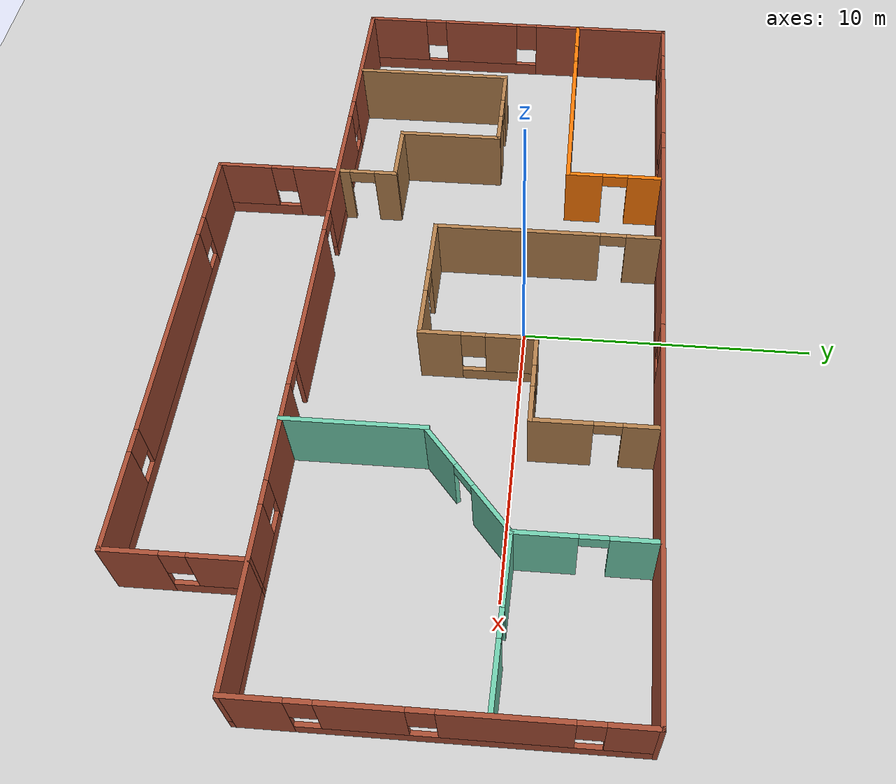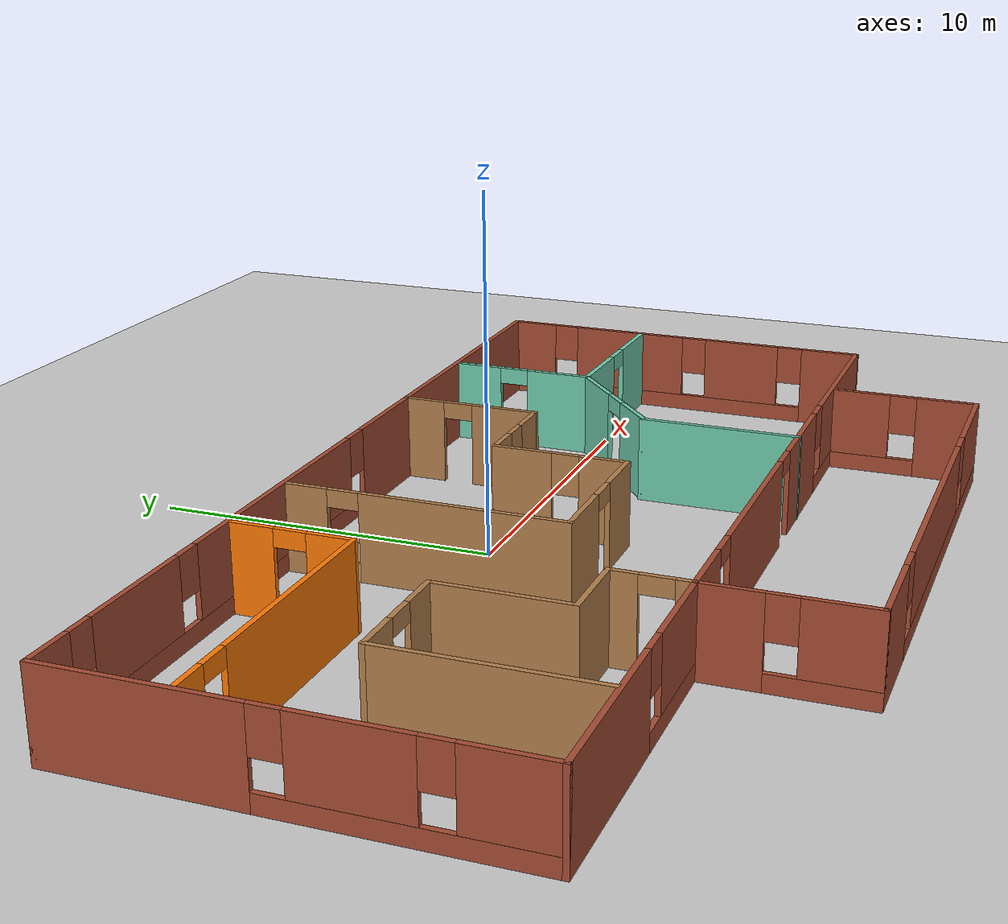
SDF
<sdf version="1.6">
 <world name="default">
  <model name="ground_plane">
   <static>1</static>
   <link name="link">
    <collision name="collision">
     <geometry><plane><normal>0 0 1</normal><size>100 100</size></plane></geometry>
     <surface>
      <contact><collide_bitmask>65535</collide_bitmask></contact>
      <friction><ode><mu>100</mu><mu2>50</mu2></ode></friction>
     </surface>
    </collision>
    <visual name="visual">
     <cast_shadows>0</cast_shadows>
     <geometry><plane><normal>0 0 1</normal><size>100 100</size></plane></geometry>
     <material>
      <script><uri>file://media/materials/scripts/gazebo.material</uri><name>Gazebo/Grey</name></script>
     </material>
    </visual>
   </link>
  </model>
  <model name="Building">
   <pose>0.19679 -3.43922 0 0 -0 0</pose>
   <link name="Wall_10">
    <pose>11.1971 3.62387 0 0 0 -0.022081</pose>
    <visual name="Wall_10_Visual_0">
     <pose>-1.47859 0 1.25 0 -0 0</pose>
     <geometry><box><size>2.39049 0.15 2.5</size></box></geometry>
     <material>
      <script><uri>file://media/materials/scripts/gazebo.material</uri><name>Gazebo/Grey</name></script>
      <ambient>0.435294 0.796078 0.67451 1</ambient>
     </material>
     <meta><layer>0</layer></meta>
    </visual>
    <collision name="Wall_10_Collision_0">
     <geometry><box><size>2.39049 0.15 2.5</size></box></geometry>
     <pose>-1.47859 0 1.25 0 -0 0</pose>
    </collision>
    <visual name="Wall_10_Visual_1">
     <pose>1.64525 0 1.25 0 -0 0</pose>
     <geometry><box><size>2.05719 0.15 2.5</size></box></geometry>
     <material>
      <script><uri>file://media/materials/scripts/gazebo.material</uri><name>Gazebo/Grey</name></script>
      <ambient>0.435294 0.796078 0.67451 1</ambient>
     </material>
     <meta><layer>0</layer></meta>
    </visual>
    <collision name="Wall_10_Collision_1">
     <geometry><box><size>2.05719 0.15 2.5</size></box></geometry>
     <pose>1.64525 0 1.25 0 -0 0</pose>
    </collision>
    <visual name="Wall_10_Visual_2">
     <pose>0.166652 0 2.25 0 -0 0</pose>
     <geometry><box><size>0.9 0.15 0.5</size></box></geometry>
     <material>
      <script><uri>file://media/materials/scripts/gazebo.material</uri><name>Gazebo/Grey</name></script>
      <ambient>0.435294 0.796078 0.67451 1</ambient>
     </material>
     <meta><layer>0</layer></meta>
    </visual>
    <collision name="Wall_10_Collision_2">
     <geometry><box><size>0.9 0.15 0.5</size></box></geometry>
     <pose>0.166652 0 2.25 0 -0 0</pose>
    </collision>
   </link>
   <link name="Wall_12">
    <pose>8.59888 5.84302 0 0 -0 1.5708</pose>
    <visual name="Wall_12_Visual_0">
     <pose>-1.2176 0 1.25 0 -0 0</pose>
     <geometry><box><size>2.06481 0.15 2.5</size></box></geometry>
     <material>
      <script><uri>file://media/materials/scripts/gazebo.material</uri><name>Gazebo/Grey</name></script>
      <ambient>0.435294 0.796078 0.67451 1</ambient>
     </material>
     <meta><layer>0</layer></meta>
    </visual>
    <collision name="Wall_12_Collision_0">
     <geometry><box><size>2.06481 0.15 2.5</size></box></geometry>
     <pose>-1.2176 0 1.25 0 -0 0</pose>
    </collision>
    <visual name="Wall_12_Visual_1">
     <pose>1.4824 0 1.25 0 -0 0</pose>
     <geometry><box><size>1.53519 0.15 2.5</size></box></geometry>
     <material>
      <script><uri>file://media/materials/scripts/gazebo.material</uri><name>Gazebo/Grey</name></script>
      <ambient>0.435294 0.796078 0.67451 1</ambient>
     </material>
     <meta><layer>0</layer></meta>
    </visual>
    <collision name="Wall_12_Collision_1">
     <geometry><box><size>1.53519 0.15 2.5</size></box></geometry>
     <pose>1.4824 0 1.25 0 -0 0</pose>
    </collision>
    <visual name="Wall_12_Visual_2">
     <pose>0.264806 0 2.25 0 -0 0</pose>
     <geometry><box><size>0.9 0.15 0.5</size></box></geometry>
     <material>
      <script><uri>file://media/materials/scripts/gazebo.material</uri><name>Gazebo/Grey</name></script>
      <ambient>0.435294 0.796078 0.67451 1</ambient>
     </material>
     <meta><layer>0</layer></meta>
    </visual>
    <collision name="Wall_12_Collision_2">
     <geometry><box><size>0.9 0.15 0.5</size></box></geometry>
     <pose>0.264806 0 2.25 0 -0 0</pose>
    </collision>
   </link>
   <link name="Wall_14">
    <pose>-2.94311 4.05196 0 0 0 -1.5708</pose>
    <visual name="Wall_14_Visual_0">
     <pose>-3.37904 0 1.25 0 -0 0</pose>
     <geometry><box><size>1.24193 0.15 2.5</size></box></geometry>
     <material>
      <script><uri>file://media/materials/scripts/gazebo.material</uri><name>Gazebo/Wood</name></script>
      <ambient>1 1 1 1</ambient>
     </material>
     <meta><layer>0</layer></meta>
    </visual>
    <collision name="Wall_14_Collision_0">
     <geometry><box><size>1.24193 0.15 2.5</size></box></geometry>
     <pose>-3.37904 0 1.25 0 -0 0</pose>
    </collision>
    <visual name="Wall_14_Visual_1">
     <pose>1.07096 0 1.25 0 -0 0</pose>
     <geometry><box><size>5.85807 0.15 2.5</size></box></geometry>
     <material>
      <script><uri>file://media/materials/scripts/gazebo.material</uri><name>Gazebo/Wood</name></script>
      <ambient>1 1 1 1</ambient>
     </material>
     <meta><layer>0</layer></meta>
    </visual>
    <collision name="Wall_14_Collision_1">
     <geometry><box><size>5.85807 0.15 2.5</size></box></geometry>
     <pose>1.07096 0 1.25 0 -0 0</pose>
    </collision>
    <visual name="Wall_14_Visual_2">
     <pose>-2.30807 0 2.25 0 -0 0</pose>
     <geometry><box><size>0.9 0.15 0.5</size></box></geometry>
     <material>
      <script><uri>file://media/materials/scripts/gazebo.material</uri><name>Gazebo/Wood</name></script>
      <ambient>1 1 1 1</ambient>
     </material>
     <meta><layer>0</layer></meta>
    </visual>
    <collision name="Wall_14_Collision_2">
     <geometry><box><size>0.9 0.15 0.5</size></box></geometry>
     <pose>-2.30807 0 2.25 0 -0 0</pose>
    </collision>
   </link>
   <link name="Wall_15">
    <pose>-0.643108 0.126957 0 0 -0 0</pose>
    <visual name="Wall_15_Visual_0">
     <pose>-1.33137 0 1.25 0 -0 0</pose>
     <geometry><box><size>2.08726 0.15 2.5</size></box></geometry>
     <material>
      <script><uri>file://media/materials/scripts/gazebo.material</uri><name>Gazebo/Wood</name></script>
      <ambient>1 1 1 1</ambient>
     </material>
     <meta><layer>0</layer></meta>
    </visual>
    <collision name="Wall_15_Collision_0">
     <geometry><box><size>2.08726 0.15 2.5</size></box></geometry>
     <pose>-1.33137 0 1.25 0 -0 0</pose>
    </collision>
    <visual name="Wall_15_Visual_1">
     <pose>1.49363 0 1.25 0 -0 0</pose>
     <geometry><box><size>1.76274 0.15 2.5</size></box></geometry>
     <material>
      <script><uri>file://media/materials/scripts/gazebo.material</uri><name>Gazebo/Wood</name></script>
      <ambient>1 1 1 1</ambient>
     </material>
     <meta><layer>0</layer></meta>
    </visual>
    <collision name="Wall_15_Collision_1">
     <geometry><box><size>1.76274 0.15 2.5</size></box></geometry>
     <pose>1.49363 0 1.25 0 -0 0</pose>
    </collision>
    <visual name="Wall_15_Visual_2">
     <pose>0.16226 0 2.25 0 -0 0</pose>
     <geometry><box><size>0.9 0.15 0.5</size></box></geometry>
     <material>
      <script><uri>file://media/materials/scripts/gazebo.material</uri><name>Gazebo/Wood</name></script>
      <ambient>1 1 1 1</ambient>
     </material>
     <meta><layer>0</layer></meta>
    </visual>
    <collision name="Wall_15_Collision_2">
     <geometry><box><size>0.9 0.15 0.5</size></box></geometry>
     <pose>0.16226 0 2.25 0 -0 0</pose>
    </collision>
   </link>
   <link name="Wall_16">
    <pose>1.65689 2.05196 0 0 -0 1.5708</pose>
    <visual name="Wall_16_Visual_0">
     <pose>-1.27857 0 1.25 0 -0 0</pose>
     <geometry><box><size>1.44286 0.15 2.5</size></box></geometry>
     <material>
      <script><uri>file://media/materials/scripts/gazebo.material</uri><name>Gazebo/Wood</name></script>
      <ambient>1 1 1 1</ambient>
     </material>
     <meta><layer>0</layer></meta>
    </visual>
    <collision name="Wall_16_Collision_0">
     <geometry><box><size>1.44286 0.15 2.5</size></box></geometry>
     <pose>-1.27857 0 1.25 0 -0 0</pose>
    </collision>
    <visual name="Wall_16_Visual_1">
     <pose>0.721429 0 0.25 0 -0 0</pose>
     <geometry><box><size>2.55714 0.15 0.5</size></box></geometry>
     <material>
      <script><uri>file://media/materials/scripts/gazebo.material</uri><name>Gazebo/Wood</name></script>
      <ambient>1 1 1 1</ambient>
     </material>
     <meta><layer>0</layer></meta>
    </visual>
    <collision name="Wall_16_Collision_1">
     <geometry><box><size>2.55714 0.15 0.5</size></box></geometry>
     <pose>0.721429 0 0.25 0 -0 0</pose>
    </collision>
    <visual name="Wall_16_Visual_2">
     <pose>1.12143 0 1.5 0 -0 0</pose>
     <geometry><box><size>1.75714 0.15 2</size></box></geometry>
     <material>
      <script><uri>file://media/materials/scripts/gazebo.material</uri><name>Gazebo/Wood</name></script>
      <ambient>1 1 1 1</ambient>
     </material>
     <meta><layer>0</layer></meta>
    </visual>
    <collision name="Wall_16_Collision_2">
     <geometry><box><size>1.75714 0.15 2</size></box></geometry>
     <pose>1.12143 0 1.5 0 -0 0</pose>
    </collision>
    <visual name="Wall_16_Visual_3">
     <pose>-0.157143 0 1.9 0 -0 0</pose>
     <geometry><box><size>0.8 0.15 1.2</size></box></geometry>
     <material>
      <script><uri>file://media/materials/scripts/gazebo.material</uri><name>Gazebo/Wood</name></script>
      <ambient>1 1 1 1</ambient>
     </material>
     <meta><layer>0</layer></meta>
    </visual>
    <collision name="Wall_16_Collision_3">
     <geometry><box><size>0.8 0.15 1.2</size></box></geometry>
     <pose>-0.157143 0 1.9 0 -0 0</pose>
    </collision>
   </link>
   <link name="Wall_17">
    <pose>3.20689 3.97696 0 0 -0 0</pose>
    <visual name="Wall_17_Visual_0">
     <pose>-1.05597 0 1.25 0 -0 0</pose>
     <geometry><box><size>1.13807 0.15 2.5</size></box></geometry>
     <material>
      <script><uri>file://media/materials/scripts/gazebo.material</uri><name>Gazebo/Wood</name></script>
      <ambient>1 1 1 1</ambient>
     </material>
     <meta><layer>0</layer></meta>
    </visual>
    <collision name="Wall_17_Collision_0">
     <geometry><box><size>1.13807 0.15 2.5</size></box></geometry>
     <pose>-1.05597 0 1.25 0 -0 0</pose>
    </collision>
    <visual name="Wall_17_Visual_1">
     <pose>0.569033 0 0.25 0 -0 0</pose>
     <geometry><box><size>2.11193 0.15 0.5</size></box></geometry>
     <material>
      <script><uri>file://media/materials/scripts/gazebo.material</uri><name>Gazebo/Wood</name></script>
      <ambient>1 1 1 1</ambient>
     </material>
     <meta><layer>0</layer></meta>
    </visual>
    <collision name="Wall_17_Collision_1">
     <geometry><box><size>2.11193 0.15 0.5</size></box></geometry>
     <pose>0.569033 0 0.25 0 -0 0</pose>
    </collision>
    <visual name="Wall_17_Visual_2">
     <pose>0.969033 0 1.5 0 -0 0</pose>
     <geometry><box><size>1.31193 0.15 2</size></box></geometry>
     <material>
      <script><uri>file://media/materials/scripts/gazebo.material</uri><name>Gazebo/Wood</name></script>
      <ambient>1 1 1 1</ambient>
     </material>
     <meta><layer>0</layer></meta>
    </visual>
    <collision name="Wall_17_Collision_2">
     <geometry><box><size>1.31193 0.15 2</size></box></geometry>
     <pose>0.969033 0 1.5 0 -0 0</pose>
    </collision>
    <visual name="Wall_17_Visual_3">
     <pose>-0.086934 0 1.9 0 -0 0</pose>
     <geometry><box><size>0.8 0.15 1.2</size></box></geometry>
     <material>
      <script><uri>file://media/materials/scripts/gazebo.material</uri><name>Gazebo/Wood</name></script>
      <ambient>1 1 1 1</ambient>
     </material>
     <meta><layer>0</layer></meta>
    </visual>
    <collision name="Wall_17_Collision_3">
     <geometry><box><size>0.8 0.15 1.2</size></box></geometry>
     <pose>-0.086934 0 1.9 0 -0 0</pose>
    </collision>
   </link>
   <link name="Wall_18">
    <pose>4.75689 6.02696 0 0 -0 1.5708</pose>
    <visual name="Wall_18_Visual_0">
     <pose>-1.09849 0 1.25 0 -0 0</pose>
     <geometry><box><size>2.05302 0.15 2.5</size></box></geometry>
     <material>
      <script><uri>file://media/materials/scripts/gazebo.material</uri><name>Gazebo/Wood</name></script>
      <ambient>1 1 1 1</ambient>
     </material>
     <meta><layer>0</layer></meta>
    </visual>
    <collision name="Wall_18_Collision_0">
     <geometry><box><size>2.05302 0.15 2.5</size></box></geometry>
     <pose>-1.09849 0 1.25 0 -0 0</pose>
    </collision>
    <visual name="Wall_18_Visual_1">
     <pose>1.47651 0 1.25 0 -0 0</pose>
     <geometry><box><size>1.29698 0.15 2.5</size></box></geometry>
     <material>
      <script><uri>file://media/materials/scripts/gazebo.material</uri><name>Gazebo/Wood</name></script>
      <ambient>1 1 1 1</ambient>
     </material>
     <meta><layer>0</layer></meta>
    </visual>
    <collision name="Wall_18_Collision_1">
     <geometry><box><size>1.29698 0.15 2.5</size></box></geometry>
     <pose>1.47651 0 1.25 0 -0 0</pose>
    </collision>
    <visual name="Wall_18_Visual_2">
     <pose>0.378016 0 2.25 0 -0 0</pose>
     <geometry><box><size>0.9 0.15 0.5</size></box></geometry>
     <material>
      <script><uri>file://media/materials/scripts/gazebo.material</uri><name>Gazebo/Wood</name></script>
      <ambient>1 1 1 1</ambient>
     </material>
     <meta><layer>0</layer></meta>
    </visual>
    <collision name="Wall_18_Collision_2">
     <geometry><box><size>0.9 0.15 0.5</size></box></geometry>
     <pose>0.378016 0 2.25 0 -0 0</pose>
    </collision>
   </link>
   <link name="Wall_24">
    <collision name="Wall_24_Collision">
     <geometry><box><size>5.75 0.15 2.5</size></box></geometry>
     <pose>0 0 1.25 0 -0 0</pose>
    </collision>
    <visual name="Wall_24_Visual">
     <pose>0 0 1.25 0 -0 0</pose>
     <geometry><box><size>5.75 0.15 2.5</size></box></geometry>
     <material>
      <script><uri>file://media/materials/scripts/gazebo.material</uri><name>Gazebo/Wood</name></script>
      <ambient>1 1 1 1</ambient>
     </material>
     <meta><layer>0</layer></meta>
    </visual>
    <pose>-10.7742 -0.849319 0 0 0 -1.5708</pose>
   </link>
   <link name="Wall_26">
    <pose>-9.09921 1.95068 0 0 -0 0</pose>
    <visual name="Wall_26_Visual_0">
     <pose>-1.06472 0 1.25 0 -0 0</pose>
     <geometry><box><size>1.37057 0.15 2.5</size></box></geometry>
     <material>
      <script><uri>file://media/materials/scripts/gazebo.material</uri><name>Gazebo/Wood</name></script>
      <ambient>1 1 1 1</ambient>
     </material>
     <meta><layer>0</layer></meta>
    </visual>
    <collision name="Wall_26_Collision_0">
     <geometry><box><size>1.37057 0.15 2.5</size></box></geometry>
     <pose>-1.06472 0 1.25 0 -0 0</pose>
    </collision>
    <visual name="Wall_26_Visual_1">
     <pose>1.13528 0 1.25 0 -0 0</pose>
     <geometry><box><size>1.22943 0.15 2.5</size></box></geometry>
     <material>
      <script><uri>file://media/materials/scripts/gazebo.material</uri><name>Gazebo/Wood</name></script>
      <ambient>1 1 1 1</ambient>
     </material>
     <meta><layer>0</layer></meta>
    </visual>
    <collision name="Wall_26_Collision_1">
     <geometry><box><size>1.22943 0.15 2.5</size></box></geometry>
     <pose>1.13528 0 1.25 0 -0 0</pose>
    </collision>
    <visual name="Wall_26_Visual_2">
     <pose>0.070568 0 2.25 0 -0 0</pose>
     <geometry><box><size>0.9 0.15 0.5</size></box></geometry>
     <material>
      <script><uri>file://media/materials/scripts/gazebo.material</uri><name>Gazebo/Wood</name></script>
      <ambient>1 1 1 1</ambient>
     </material>
     <meta><layer>0</layer></meta>
    </visual>
    <collision name="Wall_26_Collision_2">
     <geometry><box><size>0.9 0.15 0.5</size></box></geometry>
     <pose>0.070568 0 2.25 0 -0 0</pose>
    </collision>
   </link>
   <link name="Wall_27">
    <collision name="Wall_27_Collision">
     <geometry><box><size>3.75 0.15 2.5</size></box></geometry>
     <pose>0 0 1.25 0 -0 0</pose>
    </collision>
    <visual name="Wall_27_Visual">
     <pose>0 0 1.25 0 -0 0</pose>
     <geometry><box><size>3.75 0.15 2.5</size></box></geometry>
     <material>
      <script><uri>file://media/materials/scripts/gazebo.material</uri><name>Gazebo/Wood</name></script>
      <ambient>1 1 1 1</ambient>
     </material>
     <meta><layer>0</layer></meta>
    </visual>
    <pose>-7.42421 0.150682 0 0 0 -1.5708</pose>
   </link>
   <link name="Wall_3">
    <pose>0 8.09932 0 0 -0 3.14159</pose>
    <visual name="Wall_3_Visual_0">
     <pose>-7.78887 0 1.25 0 -0 0</pose>
     <geometry><box><size>12.4223 0.15 2.5</size></box></geometry>
     <material>
      <script><uri>file://media/materials/scripts/gazebo.material</uri><name>Gazebo/Bricks</name></script>
      <ambient>1 1 1 1</ambient>
     </material>
     <meta><layer>0</layer></meta>
    </visual>
    <collision name="Wall_3_Collision_0">
     <geometry><box><size>12.4223 0.15 2.5</size></box></geometry>
     <pose>-7.78887 0 1.25 0 -0 0</pose>
    </collision>
    <visual name="Wall_3_Visual_1">
     <pose>6.21113 0 0.25 0 -0 0</pose>
     <geometry><box><size>15.5777 0.15 0.5</size></box></geometry>
     <material>
      <script><uri>file://media/materials/scripts/gazebo.material</uri><name>Gazebo/Bricks</name></script>
      <ambient>1 1 1 1</ambient>
     </material>
     <meta><layer>0</layer></meta>
    </visual>
    <collision name="Wall_3_Collision_1">
     <geometry><box><size>15.5777 0.15 0.5</size></box></geometry>
     <pose>6.21113 0 0.25 0 -0 0</pose>
    </collision>
    <visual name="Wall_3_Visual_2">
     <pose>3.28973 0 1.5 0 -0 0</pose>
     <geometry><box><size>8.13492 0.15 2</size></box></geometry>
     <material>
      <script><uri>file://media/materials/scripts/gazebo.material</uri><name>Gazebo/Bricks</name></script>
      <ambient>1 1 1 1</ambient>
     </material>
     <meta><layer>0</layer></meta>
    </visual>
    <collision name="Wall_3_Collision_2">
     <geometry><box><size>8.13492 0.15 2</size></box></geometry>
     <pose>3.28973 0 1.5 0 -0 0</pose>
    </collision>
    <visual name="Wall_3_Visual_3">
     <pose>9.92404 0 1.5 0 -0 0</pose>
     <geometry><box><size>3.5337 0.15 2</size></box></geometry>
     <material>
      <script><uri>file://media/materials/scripts/gazebo.material</uri><name>Gazebo/Bricks</name></script>
      <ambient>1 1 1 1</ambient>
     </material>
     <meta><layer>0</layer></meta>
    </visual>
    <collision name="Wall_3_Collision_3">
     <geometry><box><size>3.5337 0.15 2</size></box></geometry>
     <pose>9.92404 0 1.5 0 -0 0</pose>
    </collision>
    <visual name="Wall_3_Visual_4">
     <pose>13.2454 0 1.5 0 -0 0</pose>
     <geometry><box><size>1.50911 0.15 2</size></box></geometry>
     <material>
      <script><uri>file://media/materials/scripts/gazebo.material</uri><name>Gazebo/Bricks</name></script>
      <ambient>1 1 1 1</ambient>
     </material>
     <meta><layer>0</layer></meta>
    </visual>
    <collision name="Wall_3_Collision_4">
     <geometry><box><size>1.50911 0.15 2</size></box></geometry>
     <pose>13.2454 0 1.5 0 -0 0</pose>
    </collision>
    <visual name="Wall_3_Visual_5">
     <pose>-1.17773 0 1.9 0 -0 0</pose>
     <geometry><box><size>0.8 0.15 1.2</size></box></geometry>
     <material>
      <script><uri>file://media/materials/scripts/gazebo.material</uri><name>Gazebo/Bricks</name></script>
      <ambient>1 1 1 1</ambient>
     </material>
     <meta><layer>0</layer></meta>
    </visual>
    <collision name="Wall_3_Collision_5">
     <geometry><box><size>0.8 0.15 1.2</size></box></geometry>
     <pose>-1.17773 0 1.9 0 -0 0</pose>
    </collision>
    <visual name="Wall_3_Visual_6">
     <pose>7.75719 0 1.9 0 -0 0</pose>
     <geometry><box><size>0.8 0.15 1.2</size></box></geometry>
     <material>
      <script><uri>file://media/materials/scripts/gazebo.material</uri><name>Gazebo/Bricks</name></script>
      <ambient>1 1 1 1</ambient>
     </material>
     <meta><layer>0</layer></meta>
    </visual>
    <collision name="Wall_3_Collision_6">
     <geometry><box><size>0.8 0.15 1.2</size></box></geometry>
     <pose>7.75719 0 1.9 0 -0 0</pose>
    </collision>
    <visual name="Wall_3_Visual_7">
     <pose>12.0909 0 1.9 0 -0 0</pose>
     <geometry><box><size>0.8 0.15 1.2</size></box></geometry>
     <material>
      <script><uri>file://media/materials/scripts/gazebo.material</uri><name>Gazebo/Bricks</name></script>
      <ambient>1 1 1 1</ambient>
     </material>
     <meta><layer>0</layer></meta>
    </visual>
    <collision name="Wall_3_Collision_7">
     <geometry><box><size>0.8 0.15 1.2</size></box></geometry>
     <pose>12.0909 0 1.9 0 -0 0</pose>
    </collision>
   </link>
   <link name="Wall_31">
    <collision name="Wall_31_Collision">
     <geometry><box><size>2.25 0.15 2.5</size></box></geometry>
     <pose>0 0 1.25 0 -0 0</pose>
    </collision>
    <visual name="Wall_31_Visual">
     <pose>0 0 1.25 0 -0 0</pose>
     <geometry><box><size>2.25 0.15 2.5</size></box></geometry>
     <material>
      <script><uri>file://media/materials/scripts/gazebo.material</uri><name>Gazebo/Wood</name></script>
      <ambient>1 1 1 1</ambient>
     </material>
     <meta><layer>0</layer></meta>
    </visual>
    <pose>-6.37421 -1.64932 0 0 -0 0</pose>
   </link>
   <link name="Wall_32">
    <pose>-5.32421 -2.69932 0 0 0 -1.5708</pose>
    <visual name="Wall_32_Visual_0">
     <pose>-0.711165 0 1.25 0 -0 0</pose>
     <geometry><box><size>0.827671 0.15 2.5</size></box></geometry>
     <material>
      <script><uri>file://media/materials/scripts/gazebo.material</uri><name>Gazebo/Wood</name></script>
      <ambient>1 1 1 1</ambient>
     </material>
     <meta><layer>0</layer></meta>
    </visual>
    <collision name="Wall_32_Collision_0">
     <geometry><box><size>0.827671 0.15 2.5</size></box></geometry>
     <pose>-0.711165 0 1.25 0 -0 0</pose>
    </collision>
    <visual name="Wall_32_Visual_1">
     <pose>0.863835 0 1.25 0 -0 0</pose>
     <geometry><box><size>0.522329 0.15 2.5</size></box></geometry>
     <material>
      <script><uri>file://media/materials/scripts/gazebo.material</uri><name>Gazebo/Wood</name></script>
      <ambient>1 1 1 1</ambient>
     </material>
     <meta><layer>0</layer></meta>
    </visual>
    <collision name="Wall_32_Collision_1">
     <geometry><box><size>0.522329 0.15 2.5</size></box></geometry>
     <pose>0.863835 0 1.25 0 -0 0</pose>
    </collision>
    <visual name="Wall_32_Visual_2">
     <pose>0.152671 0 2.25 0 -0 0</pose>
     <geometry><box><size>0.9 0.15 0.5</size></box></geometry>
     <material>
      <script><uri>file://media/materials/scripts/gazebo.material</uri><name>Gazebo/Wood</name></script>
      <ambient>1 1 1 1</ambient>
     </material>
     <meta><layer>0</layer></meta>
    </visual>
    <collision name="Wall_32_Collision_2">
     <geometry><box><size>0.9 0.15 0.5</size></box></geometry>
     <pose>0.152671 0 2.25 0 -0 0</pose>
    </collision>
   </link>
   <link name="Wall_34">
    <pose>-13.925 2.17432 0 0 0 -1.5708</pose>
    <visual name="Wall_34_Visual_0">
     <pose>-3.38924 0 1.25 0 -0 0</pose>
     <geometry><box><size>5.22152 0.15 2.5</size></box></geometry>
     <material>
      <script><uri>file://media/materials/scripts/gazebo.material</uri><name>Gazebo/Bricks</name></script>
      <ambient>1 1 1 1</ambient>
     </material>
     <meta><layer>0</layer></meta>
    </visual>
    <collision name="Wall_34_Collision_0">
     <geometry><box><size>5.22152 0.15 2.5</size></box></geometry>
     <pose>-3.38924 0 1.25 0 -0 0</pose>
    </collision>
    <visual name="Wall_34_Visual_1">
     <pose>2.61076 0 0.25 0 -0 0</pose>
     <geometry><box><size>6.77848 0.15 0.5</size></box></geometry>
     <material>
      <script><uri>file://media/materials/scripts/gazebo.material</uri><name>Gazebo/Bricks</name></script>
      <ambient>1 1 1 1</ambient>
     </material>
     <meta><layer>0</layer></meta>
    </visual>
    <collision name="Wall_34_Collision_1">
     <geometry><box><size>6.77848 0.15 0.5</size></box></geometry>
     <pose>2.61076 0 0.25 0 -0 0</pose>
    </collision>
    <visual name="Wall_34_Visual_2">
     <pose>1.46736 0 1.5 0 -0 0</pose>
     <geometry><box><size>2.89167 0.15 2</size></box></geometry>
     <material>
      <script><uri>file://media/materials/scripts/gazebo.material</uri><name>Gazebo/Bricks</name></script>
      <ambient>1 1 1 1</ambient>
     </material>
     <meta><layer>0</layer></meta>
    </visual>
    <collision name="Wall_34_Collision_2">
     <geometry><box><size>2.89167 0.15 2</size></box></geometry>
     <pose>1.46736 0 1.5 0 -0 0</pose>
    </collision>
    <visual name="Wall_34_Visual_3">
     <pose>4.8566 0 1.5 0 -0 0</pose>
     <geometry><box><size>2.2868 0.15 2</size></box></geometry>
     <material>
      <script><uri>file://media/materials/scripts/gazebo.material</uri><name>Gazebo/Bricks</name></script>
      <ambient>1 1 1 1</ambient>
     </material>
     <meta><layer>0</layer></meta>
    </visual>
    <collision name="Wall_34_Collision_3">
     <geometry><box><size>2.2868 0.15 2</size></box></geometry>
     <pose>4.8566 0 1.5 0 -0 0</pose>
    </collision>
    <visual name="Wall_34_Visual_4">
     <pose>-0.378475 0 1.9 0 -0 0</pose>
     <geometry><box><size>0.8 0.15 1.2</size></box></geometry>
     <material>
      <script><uri>file://media/materials/scripts/gazebo.material</uri><name>Gazebo/Bricks</name></script>
      <ambient>1 1 1 1</ambient>
     </material>
     <meta><layer>0</layer></meta>
    </visual>
    <collision name="Wall_34_Collision_4">
     <geometry><box><size>0.8 0.15 1.2</size></box></geometry>
     <pose>-0.378475 0 1.9 0 -0 0</pose>
    </collision>
    <visual name="Wall_34_Visual_5">
     <pose>3.3132 0 1.9 0 -0 0</pose>
     <geometry><box><size>0.8 0.15 1.2</size></box></geometry>
     <material>
      <script><uri>file://media/materials/scripts/gazebo.material</uri><name>Gazebo/Bricks</name></script>
      <ambient>1 1 1 1</ambient>
     </material>
     <meta><layer>0</layer></meta>
    </visual>
    <collision name="Wall_34_Collision_5">
     <geometry><box><size>0.8 0.15 1.2</size></box></geometry>
     <pose>3.3132 0 1.9 0 -0 0</pose>
    </collision>
   </link>
   <link name="Wall_35">
    <pose>0 -3.75068 0 0 -0 0</pose>
    <visual name="Wall_35_Visual_0">
     <pose>-11.4799 0 1.25 0 -0 0</pose>
     <geometry><box><size>5.04027 0.15 2.5</size></box></geometry>
     <material>
      <script><uri>file://media/materials/scripts/gazebo.material</uri><name>Gazebo/Bricks</name></script>
      <ambient>1 1 1 1</ambient>
     </material>
     <meta><layer>0</layer></meta>
    </visual>
    <collision name="Wall_35_Collision_0">
     <geometry><box><size>5.04027 0.15 2.5</size></box></geometry>
     <pose>-11.4799 0 1.25 0 -0 0</pose>
    </collision>
    <visual name="Wall_35_Visual_1">
     <pose>0.344575 0 1.25 0 -0 0</pose>
     <geometry><box><size>5.57657 0.15 2.5</size></box></geometry>
     <material>
      <script><uri>file://media/materials/scripts/gazebo.material</uri><name>Gazebo/Bricks</name></script>
      <ambient>1 1 1 1</ambient>
     </material>
     <meta><layer>0</layer></meta>
    </visual>
    <collision name="Wall_35_Collision_1">
     <geometry><box><size>5.57657 0.15 2.5</size></box></geometry>
     <pose>0.344575 0 1.25 0 -0 0</pose>
    </collision>
    <visual name="Wall_35_Visual_2">
     <pose>5.7492 0 1.25 0 -0 0</pose>
     <geometry><box><size>3.43268 0.15 2.5</size></box></geometry>
     <material>
      <script><uri>file://media/materials/scripts/gazebo.material</uri><name>Gazebo/Bricks</name></script>
      <ambient>1 1 1 1</ambient>
     </material>
     <meta><layer>0</layer></meta>
    </visual>
    <collision name="Wall_35_Collision_2">
     <geometry><box><size>3.43268 0.15 2.5</size></box></geometry>
     <pose>5.7492 0 1.25 0 -0 0</pose>
    </collision>
    <visual name="Wall_35_Visual_3">
     <pose>-6.15172 0 0.25 0 -0 0</pose>
     <geometry><box><size>5.61601 0.15 0.5</size></box></geometry>
     <material>
      <script><uri>file://media/materials/scripts/gazebo.material</uri><name>Gazebo/Bricks</name></script>
      <ambient>1 1 1 1</ambient>
     </material>
     <meta><layer>0</layer></meta>
    </visual>
    <collision name="Wall_35_Collision_3">
     <geometry><box><size>5.61601 0.15 0.5</size></box></geometry>
     <pose>-6.15172 0 0.25 0 -0 0</pose>
    </collision>
    <visual name="Wall_35_Visual_4">
     <pose>10.7328 0 0.25 0 -0 0</pose>
     <geometry><box><size>6.53446 0.15 0.5</size></box></geometry>
     <material>
      <script><uri>file://media/materials/scripts/gazebo.material</uri><name>Gazebo/Bricks</name></script>
      <ambient>1 1 1 1</ambient>
     </material>
     <meta><layer>0</layer></meta>
    </visual>
    <collision name="Wall_35_Collision_4">
     <geometry><box><size>6.53446 0.15 0.5</size></box></geometry>
     <pose>10.7328 0 0.25 0 -0 0</pose>
    </collision>
    <visual name="Wall_35_Visual_5">
     <pose>-5.75172 0 1.5 0 -0 0</pose>
     <geometry><box><size>4.81602 0.15 2</size></box></geometry>
     <material>
      <script><uri>file://media/materials/scripts/gazebo.material</uri><name>Gazebo/Bricks</name></script>
      <ambient>1 1 1 1</ambient>
     </material>
     <meta><layer>0</layer></meta>
    </visual>
    <collision name="Wall_35_Collision_5">
     <geometry><box><size>4.81602 0.15 2</size></box></geometry>
     <pose>-5.75172 0 1.5 0 -0 0</pose>
    </collision>
    <visual name="Wall_35_Visual_6">
     <pose>-5.75172 0 1.5 0 -0 0</pose>
     <geometry><box><size>4.81602 0.15 2</size></box></geometry>
     <material>
      <script><uri>file://media/materials/scripts/gazebo.material</uri><name>Gazebo/Bricks</name></script>
      <ambient>1 1 1 1</ambient>
     </material>
     <meta><layer>0</layer></meta>
    </visual>
    <collision name="Wall_35_Collision_6">
     <geometry><box><size>4.81602 0.15 2</size></box></geometry>
     <pose>-5.75172 0 1.5 0 -0 0</pose>
    </collision>
    <visual name="Wall_35_Visual_7">
     <pose>11.1328 0 1.5 0 -0 0</pose>
     <geometry><box><size>5.73446 0.15 2</size></box></geometry>
     <material>
      <script><uri>file://media/materials/scripts/gazebo.material</uri><name>Gazebo/Bricks</name></script>
      <ambient>1 1 1 1</ambient>
     </material>
     <meta><layer>0</layer></meta>
    </visual>
    <collision name="Wall_35_Collision_7">
     <geometry><box><size>5.73446 0.15 2</size></box></geometry>
     <pose>11.1328 0 1.5 0 -0 0</pose>
    </collision>
    <visual name="Wall_35_Visual_8">
     <pose>-8.55973 0 1.9 0 -0 0</pose>
     <geometry><box><size>0.8 0.15 1.2</size></box></geometry>
     <material>
      <script><uri>file://media/materials/scripts/gazebo.material</uri><name>Gazebo/Bricks</name></script>
      <ambient>1 1 1 1</ambient>
     </material>
     <meta><layer>0</layer></meta>
    </visual>
    <collision name="Wall_35_Collision_8">
     <geometry><box><size>0.8 0.15 1.2</size></box></geometry>
     <pose>-8.55973 0 1.9 0 -0 0</pose>
    </collision>
    <visual name="Wall_35_Visual_9">
     <pose>7.86554 0 1.9 0 -0 0</pose>
     <geometry><box><size>0.8 0.15 1.2</size></box></geometry>
     <material>
      <script><uri>file://media/materials/scripts/gazebo.material</uri><name>Gazebo/Bricks</name></script>
      <ambient>1 1 1 1</ambient>
     </material>
     <meta><layer>0</layer></meta>
    </visual>
    <collision name="Wall_35_Collision_9">
     <geometry><box><size>0.8 0.15 1.2</size></box></geometry>
     <pose>7.86554 0 1.9 0 -0 0</pose>
    </collision>
    <visual name="Wall_35_Visual_10">
     <pose>3.58286 0 2.25 0 -0 0</pose>
     <geometry><box><size>0.9 0.15 0.5</size></box></geometry>
     <material>
      <script><uri>file://media/materials/scripts/gazebo.material</uri><name>Gazebo/Bricks</name></script>
      <ambient>1 1 1 1</ambient>
     </material>
     <meta><layer>0</layer></meta>
    </visual>
    <collision name="Wall_35_Collision_10">
     <geometry><box><size>0.9 0.15 0.5</size></box></geometry>
     <pose>3.58286 0 2.25 0 -0 0</pose>
    </collision>
    <visual name="Wall_35_Visual_11">
     <pose>-2.89371 0 2.25 0 -0 0</pose>
     <geometry><box><size>0.9 0.15 0.5</size></box></geometry>
     <material>
      <script><uri>file://media/materials/scripts/gazebo.material</uri><name>Gazebo/Bricks</name></script>
      <ambient>1 1 1 1</ambient>
     </material>
     <meta><layer>0</layer></meta>
    </visual>
    <collision name="Wall_35_Collision_11">
     <geometry><box><size>0.9 0.15 0.5</size></box></geometry>
     <pose>-2.89371 0 2.25 0 -0 0</pose>
    </collision>
    <visual name="Wall_35_Visual_12">
     <pose>-2.89371 0 2.25 0 -0 0</pose>
     <geometry><box><size>0.9 0.15 0.5</size></box></geometry>
     <material>
      <script><uri>file://media/materials/scripts/gazebo.material</uri><name>Gazebo/Bricks</name></script>
      <ambient>1 1 1 1</ambient>
     </material>
     <meta><layer>0</layer></meta>
    </visual>
    <collision name="Wall_35_Collision_12">
     <geometry><box><size>0.9 0.15 0.5</size></box></geometry>
     <pose>-2.89371 0 2.25 0 -0 0</pose>
    </collision>
   </link>
   <link name="Wall_36">
    <pose>13.925 2.17432 0 0 -0 1.5708</pose>
    <visual name="Wall_36_Visual_0">
     <pose>-5.07061 0 1.25 0 -0 0</pose>
     <geometry><box><size>1.85878 0.15 2.5</size></box></geometry>
     <material>
      <script><uri>file://media/materials/scripts/gazebo.material</uri><name>Gazebo/Bricks</name></script>
      <ambient>1 1 1 1</ambient>
     </material>
     <meta><layer>0</layer></meta>
    </visual>
    <collision name="Wall_36_Collision_0">
     <geometry><box><size>1.85878 0.15 2.5</size></box></geometry>
     <pose>-5.07061 0 1.25 0 -0 0</pose>
    </collision>
    <visual name="Wall_36_Visual_1">
     <pose>0.929391 0 0.25 0 -0 0</pose>
     <geometry><box><size>10.1412 0.15 0.5</size></box></geometry>
     <material>
      <script><uri>file://media/materials/scripts/gazebo.material</uri><name>Gazebo/Bricks</name></script>
      <ambient>1 1 1 1</ambient>
     </material>
     <meta><layer>0</layer></meta>
    </visual>
    <collision name="Wall_36_Collision_1">
     <geometry><box><size>10.1412 0.15 0.5</size></box></geometry>
     <pose>0.929391 0 0.25 0 -0 0</pose>
    </collision>
    <visual name="Wall_36_Visual_2">
     <pose>-2.10939 0 1.5 0 -0 0</pose>
     <geometry><box><size>2.46365 0.15 2</size></box></geometry>
     <material>
      <script><uri>file://media/materials/scripts/gazebo.material</uri><name>Gazebo/Bricks</name></script>
      <ambient>1 1 1 1</ambient>
     </material>
     <meta><layer>0</layer></meta>
    </visual>
    <collision name="Wall_36_Collision_2">
     <geometry><box><size>2.46365 0.15 2</size></box></geometry>
     <pose>-2.10939 0 1.5 0 -0 0</pose>
    </collision>
    <visual name="Wall_36_Visual_3">
     <pose>1.79629 0 1.5 0 -0 0</pose>
     <geometry><box><size>3.74771 0.15 2</size></box></geometry>
     <material>
      <script><uri>file://media/materials/scripts/gazebo.material</uri><name>Gazebo/Bricks</name></script>
      <ambient>1 1 1 1</ambient>
     </material>
     <meta><layer>0</layer></meta>
    </visual>
    <collision name="Wall_36_Collision_3">
     <geometry><box><size>3.74771 0.15 2</size></box></geometry>
     <pose>1.79629 0 1.5 0 -0 0</pose>
    </collision>
    <visual name="Wall_36_Visual_4">
     <pose>5.23507 0 1.5 0 -0 0</pose>
     <geometry><box><size>1.52985 0.15 2</size></box></geometry>
     <material>
      <script><uri>file://media/materials/scripts/gazebo.material</uri><name>Gazebo/Bricks</name></script>
      <ambient>1 1 1 1</ambient>
     </material>
     <meta><layer>0</layer></meta>
    </visual>
    <collision name="Wall_36_Collision_4">
     <geometry><box><size>1.52985 0.15 2</size></box></geometry>
     <pose>5.23507 0 1.5 0 -0 0</pose>
    </collision>
    <visual name="Wall_36_Visual_5">
     <pose>-3.74122 0 1.9 0 -0 0</pose>
     <geometry><box><size>0.8 0.15 1.2</size></box></geometry>
     <material>
      <script><uri>file://media/materials/scripts/gazebo.material</uri><name>Gazebo/Bricks</name></script>
      <ambient>1 1 1 1</ambient>
     </material>
     <meta><layer>0</layer></meta>
    </visual>
    <collision name="Wall_36_Collision_5">
     <geometry><box><size>0.8 0.15 1.2</size></box></geometry>
     <pose>-3.74122 0 1.9 0 -0 0</pose>
    </collision>
    <visual name="Wall_36_Visual_6">
     <pose>-0.477565 0 1.9 0 -0 0</pose>
     <geometry><box><size>0.8 0.15 1.2</size></box></geometry>
     <material>
      <script><uri>file://media/materials/scripts/gazebo.material</uri><name>Gazebo/Bricks</name></script>
      <ambient>1 1 1 1</ambient>
     </material>
     <meta><layer>0</layer></meta>
    </visual>
    <collision name="Wall_36_Collision_6">
     <geometry><box><size>0.8 0.15 1.2</size></box></geometry>
     <pose>-0.477565 0 1.9 0 -0 0</pose>
    </collision>
    <visual name="Wall_36_Visual_7">
     <pose>4.07015 0 1.9 0 -0 0</pose>
     <geometry><box><size>0.8 0.15 1.2</size></box></geometry>
     <material>
      <script><uri>file://media/materials/scripts/gazebo.material</uri><name>Gazebo/Bricks</name></script>
      <ambient>1 1 1 1</ambient>
     </material>
     <meta><layer>0</layer></meta>
    </visual>
    <collision name="Wall_36_Collision_7">
     <geometry><box><size>0.8 0.15 1.2</size></box></geometry>
     <pose>4.07015 0 1.9 0 -0 0</pose>
    </collision>
   </link>
   <link name="Wall_38">
    <pose>-5.32421 -5.92432 0 0 0 -1.5708</pose>
    <visual name="Wall_38_Visual_0">
     <pose>-1.39036 0 1.25 0 -0 0</pose>
     <geometry><box><size>1.71928 0.15 2.5</size></box></geometry>
     <material>
      <script><uri>file://media/materials/scripts/gazebo.material</uri><name>Gazebo/Bricks</name></script>
      <ambient>1 1 1 1</ambient>
     </material>
     <meta><layer>0</layer></meta>
    </visual>
    <collision name="Wall_38_Collision_0">
     <geometry><box><size>1.71928 0.15 2.5</size></box></geometry>
     <pose>-1.39036 0 1.25 0 -0 0</pose>
    </collision>
    <visual name="Wall_38_Visual_1">
     <pose>0.859639 0 0.25 0 -0 0</pose>
     <geometry><box><size>2.78072 0.15 0.5</size></box></geometry>
     <material>
      <script><uri>file://media/materials/scripts/gazebo.material</uri><name>Gazebo/Bricks</name></script>
      <ambient>1 1 1 1</ambient>
     </material>
     <meta><layer>0</layer></meta>
    </visual>
    <collision name="Wall_38_Collision_1">
     <geometry><box><size>2.78072 0.15 0.5</size></box></geometry>
     <pose>0.859639 0 0.25 0 -0 0</pose>
    </collision>
    <visual name="Wall_38_Visual_2">
     <pose>1.25964 0 1.5 0 -0 0</pose>
     <geometry><box><size>1.98072 0.15 2</size></box></geometry>
     <material>
      <script><uri>file://media/materials/scripts/gazebo.material</uri><name>Gazebo/Bricks</name></script>
      <ambient>1 1 1 1</ambient>
     </material>
     <meta><layer>0</layer></meta>
    </visual>
    <collision name="Wall_38_Collision_2">
     <geometry><box><size>1.98072 0.15 2</size></box></geometry>
     <pose>1.25964 0 1.5 0 -0 0</pose>
    </collision>
    <visual name="Wall_38_Visual_3">
     <pose>-0.130721 0 1.9 0 -0 0</pose>
     <geometry><box><size>0.8 0.15 1.2</size></box></geometry>
     <material>
      <script><uri>file://media/materials/scripts/gazebo.material</uri><name>Gazebo/Bricks</name></script>
      <ambient>1 1 1 1</ambient>
     </material>
     <meta><layer>0</layer></meta>
    </visual>
    <collision name="Wall_38_Collision_3">
     <geometry><box><size>0.8 0.15 1.2</size></box></geometry>
     <pose>-0.130721 0 1.9 0 -0 0</pose>
    </collision>
   </link>
   <link name="Wall_39">
    <pose>2.35079 -8.09932 0 0 -0 0</pose>
    <visual name="Wall_39_Visual_0">
     <pose>-6.40036 0 1.25 0 -0 0</pose>
     <geometry><box><size>2.69927 0.15 2.5</size></box></geometry>
     <material>
      <script><uri>file://media/materials/scripts/gazebo.material</uri><name>Gazebo/Bricks</name></script>
      <ambient>1 1 1 1</ambient>
     </material>
     <meta><layer>0</layer></meta>
    </visual>
    <collision name="Wall_39_Collision_0">
     <geometry><box><size>2.69927 0.15 2.5</size></box></geometry>
     <pose>-6.40036 0 1.25 0 -0 0</pose>
    </collision>
    <visual name="Wall_39_Visual_1">
     <pose>1.34964 0 0.25 0 -0 0</pose>
     <geometry><box><size>12.8007 0.15 0.5</size></box></geometry>
     <material>
      <script><uri>file://media/materials/scripts/gazebo.material</uri><name>Gazebo/Bricks</name></script>
      <ambient>1 1 1 1</ambient>
     </material>
     <meta><layer>0</layer></meta>
    </visual>
    <collision name="Wall_39_Collision_1">
     <geometry><box><size>12.8007 0.15 0.5</size></box></geometry>
     <pose>1.34964 0 0.25 0 -0 0</pose>
    </collision>
    <visual name="Wall_39_Visual_2">
     <pose>-0.290272 0 1.5 0 -0 0</pose>
     <geometry><box><size>7.92091 0.15 2</size></box></geometry>
     <material>
      <script><uri>file://media/materials/scripts/gazebo.material</uri><name>Gazebo/Bricks</name></script>
      <ambient>1 1 1 1</ambient>
     </material>
     <meta><layer>0</layer></meta>
    </visual>
    <collision name="Wall_39_Collision_2">
     <geometry><box><size>7.92091 0.15 2</size></box></geometry>
     <pose>-0.290272 0 1.5 0 -0 0</pose>
    </collision>
    <visual name="Wall_39_Visual_3">
     <pose>6.11009 0 1.5 0 -0 0</pose>
     <geometry><box><size>3.27982 0.15 2</size></box></geometry>
     <material>
      <script><uri>file://media/materials/scripts/gazebo.material</uri><name>Gazebo/Bricks</name></script>
      <ambient>1 1 1 1</ambient>
     </material>
     <meta><layer>0</layer></meta>
    </visual>
    <collision name="Wall_39_Collision_3">
     <geometry><box><size>3.27982 0.15 2</size></box></geometry>
     <pose>6.11009 0 1.5 0 -0 0</pose>
    </collision>
    <visual name="Wall_39_Visual_4">
     <pose>-4.65073 0 1.9 0 -0 0</pose>
     <geometry><box><size>0.8 0.15 1.2</size></box></geometry>
     <material>
      <script><uri>file://media/materials/scripts/gazebo.material</uri><name>Gazebo/Bricks</name></script>
      <ambient>1 1 1 1</ambient>
     </material>
     <meta><layer>0</layer></meta>
    </visual>
    <collision name="Wall_39_Collision_4">
     <geometry><box><size>0.8 0.15 1.2</size></box></geometry>
     <pose>-4.65073 0 1.9 0 -0 0</pose>
    </collision>
    <visual name="Wall_39_Visual_5">
     <pose>4.07018 0 1.9 0 -0 0</pose>
     <geometry><box><size>0.8 0.15 1.2</size></box></geometry>
     <material>
      <script><uri>file://media/materials/scripts/gazebo.material</uri><name>Gazebo/Bricks</name></script>
      <ambient>1 1 1 1</ambient>
     </material>
     <meta><layer>0</layer></meta>
    </visual>
    <collision name="Wall_39_Collision_5">
     <geometry><box><size>0.8 0.15 1.2</size></box></geometry>
     <pose>4.07018 0 1.9 0 -0 0</pose>
    </collision>
   </link>
   <link name="Wall_40">
    <pose>10.0258 -5.92432 0 0 -0 1.5708</pose>
    <visual name="Wall_40_Visual_0">
     <pose>-1.33989 0 1.25 0 -0 0</pose>
     <geometry><box><size>1.82021 0.15 2.5</size></box></geometry>
     <material>
      <script><uri>file://media/materials/scripts/gazebo.material</uri><name>Gazebo/Bricks</name></script>
      <ambient>1 1 1 1</ambient>
     </material>
     <meta><layer>0</layer></meta>
    </visual>
    <collision name="Wall_40_Collision_0">
     <geometry><box><size>1.82021 0.15 2.5</size></box></geometry>
     <pose>-1.33989 0 1.25 0 -0 0</pose>
    </collision>
    <visual name="Wall_40_Visual_1">
     <pose>0.910107 0 0.25 0 -0 0</pose>
     <geometry><box><size>2.67979 0.15 0.5</size></box></geometry>
     <material>
      <script><uri>file://media/materials/scripts/gazebo.material</uri><name>Gazebo/Bricks</name></script>
      <ambient>1 1 1 1</ambient>
     </material>
     <meta><layer>0</layer></meta>
    </visual>
    <collision name="Wall_40_Collision_1">
     <geometry><box><size>2.67979 0.15 0.5</size></box></geometry>
     <pose>0.910107 0 0.25 0 -0 0</pose>
    </collision>
    <visual name="Wall_40_Visual_2">
     <pose>1.31011 0 1.5 0 -0 0</pose>
     <geometry><box><size>1.87979 0.15 2</size></box></geometry>
     <material>
      <script><uri>file://media/materials/scripts/gazebo.material</uri><name>Gazebo/Bricks</name></script>
      <ambient>1 1 1 1</ambient>
     </material>
     <meta><layer>0</layer></meta>
    </visual>
    <collision name="Wall_40_Collision_2">
     <geometry><box><size>1.87979 0.15 2</size></box></geometry>
     <pose>1.31011 0 1.5 0 -0 0</pose>
    </collision>
    <visual name="Wall_40_Visual_3">
     <pose>-0.029786 0 1.9 0 -0 0</pose>
     <geometry><box><size>0.8 0.15 1.2</size></box></geometry>
     <material>
      <script><uri>file://media/materials/scripts/gazebo.material</uri><name>Gazebo/Bricks</name></script>
      <ambient>1 1 1 1</ambient>
     </material>
     <meta><layer>0</layer></meta>
    </visual>
    <collision name="Wall_40_Collision_3">
     <geometry><box><size>0.8 0.15 1.2</size></box></geometry>
     <pose>-0.029786 0 1.9 0 -0 0</pose>
    </collision>
   </link>
   <link name="Wall_5">
    <pose>-9.84441 4.64262 0 0 -0 0</pose>
    <visual name="Wall_5_Visual_0">
     <pose>-3.54904 0 1.25 0 -0 0</pose>
     <geometry><box><size>1.15192 0.15 2.5</size></box></geometry>
     <material>
      <script><uri>file://media/materials/scripts/gazebo.material</uri><name>Gazebo/Grey</name></script>
      <ambient>0.996078 0.47451 0.0196078 1</ambient>
     </material>
     <meta><layer>0</layer></meta>
    </visual>
    <collision name="Wall_5_Collision_0">
     <geometry><box><size>1.15192 0.15 2.5</size></box></geometry>
     <pose>-3.54904 0 1.25 0 -0 0</pose>
    </collision>
    <visual name="Wall_5_Visual_1">
     <pose>1.02596 0 1.25 0 -0 0</pose>
     <geometry><box><size>6.19808 0.15 2.5</size></box></geometry>
     <material>
      <script><uri>file://media/materials/scripts/gazebo.material</uri><name>Gazebo/Grey</name></script>
      <ambient>0.996078 0.47451 0.0196078 1</ambient>
     </material>
     <meta><layer>0</layer></meta>
    </visual>
    <collision name="Wall_5_Collision_1">
     <geometry><box><size>6.19808 0.15 2.5</size></box></geometry>
     <pose>1.02596 0 1.25 0 -0 0</pose>
    </collision>
    <visual name="Wall_5_Visual_2">
     <pose>-2.52308 0 2.25 0 -0 0</pose>
     <geometry><box><size>0.9 0.15 0.5</size></box></geometry>
     <material>
      <script><uri>file://media/materials/scripts/gazebo.material</uri><name>Gazebo/Grey</name></script>
      <ambient>0.996078 0.47451 0.0196078 1</ambient>
     </material>
     <meta><layer>0</layer></meta>
    </visual>
    <collision name="Wall_5_Collision_2">
     <geometry><box><size>0.9 0.15 0.5</size></box></geometry>
     <pose>-2.52308 0 2.25 0 -0 0</pose>
    </collision>
   </link>
   <link name="Wall_6">
    <pose>-5.79441 6.31762 0 0 -0 1.5708</pose>
    <visual name="Wall_6_Visual_0">
     <pose>-1.0788 0 1.25 0 -0 0</pose>
     <geometry><box><size>1.34241 0.15 2.5</size></box></geometry>
     <material>
      <script><uri>file://media/materials/scripts/gazebo.material</uri><name>Gazebo/Grey</name></script>
      <ambient>0.996078 0.47451 0.0196078 1</ambient>
     </material>
     <meta><layer>0</layer></meta>
    </visual>
    <collision name="Wall_6_Collision_0">
     <geometry><box><size>1.34241 0.15 2.5</size></box></geometry>
     <pose>-1.0788 0 1.25 0 -0 0</pose>
    </collision>
    <visual name="Wall_6_Visual_1">
     <pose>1.1212 0 1.25 0 -0 0</pose>
     <geometry><box><size>1.2576 0.15 2.5</size></box></geometry>
     <material>
      <script><uri>file://media/materials/scripts/gazebo.material</uri><name>Gazebo/Grey</name></script>
      <ambient>0.996078 0.47451 0.0196078 1</ambient>
     </material>
     <meta><layer>0</layer></meta>
    </visual>
    <collision name="Wall_6_Collision_1">
     <geometry><box><size>1.2576 0.15 2.5</size></box></geometry>
     <pose>1.1212 0 1.25 0 -0 0</pose>
    </collision>
    <visual name="Wall_6_Visual_2">
     <pose>0.042405 0 2.25 0 -0 0</pose>
     <geometry><box><size>0.9 0.15 0.5</size></box></geometry>
     <material>
      <script><uri>file://media/materials/scripts/gazebo.material</uri><name>Gazebo/Grey</name></script>
      <ambient>0.996078 0.47451 0.0196078 1</ambient>
     </material>
     <meta><layer>0</layer></meta>
    </visual>
    <collision name="Wall_6_Collision_2">
     <geometry><box><size>0.9 0.15 0.5</size></box></geometry>
     <pose>0.042405 0 2.25 0 -0 0</pose>
    </collision>
   </link>
   <link name="Wall_8">
    <collision name="Wall_8_Collision">
     <geometry><box><size>4.75 0.15 2.5</size></box></geometry>
     <pose>0 0 1.25 0 -0 0</pose>
    </collision>
    <visual name="Wall_8_Visual">
     <pose>0 0 1.25 0 -0 0</pose>
     <geometry><box><size>4.75 0.15 2.5</size></box></geometry>
     <material>
      <script><uri>file://media/materials/scripts/gazebo.material</uri><name>Gazebo/Grey</name></script>
      <ambient>0.435294 0.796078 0.67451 1</ambient>
     </material>
     <meta><layer>0</layer></meta>
    </visual>
    <pose>5.28566 -1.46969 0 0 -0 1.5708</pose>
   </link>
   <link name="Wall_9">
    <pose>6.95757 2.24048 0 0 -0 0.720421</pose>
    <visual name="Wall_9_Visual_0">
     <pose>-1.43215 0 1.25 0 -0 0</pose>
     <geometry><box><size>1.65364 0.15 2.5</size></box></geometry>
     <material>
      <script><uri>file://media/materials/scripts/gazebo.material</uri><name>Gazebo/Grey</name></script>
      <ambient>0.435294 0.796078 0.67451 1</ambient>
     </material>
     <meta><layer>0</layer></meta>
    </visual>
    <collision name="Wall_9_Collision_0">
     <geometry><box><size>1.65364 0.15 2.5</size></box></geometry>
     <pose>-1.43215 0 1.25 0 -0 0</pose>
    </collision>
    <visual name="Wall_9_Visual_1">
     <pose>1.27682 0 1.25 0 -0 0</pose>
     <geometry><box><size>1.96429 0.15 2.5</size></box></geometry>
     <material>
      <script><uri>file://media/materials/scripts/gazebo.material</uri><name>Gazebo/Grey</name></script>
      <ambient>0.435294 0.796078 0.67451 1</ambient>
     </material>
     <meta><layer>0</layer></meta>
    </visual>
    <collision name="Wall_9_Collision_1">
     <geometry><box><size>1.96429 0.15 2.5</size></box></geometry>
     <pose>1.27682 0 1.25 0 -0 0</pose>
    </collision>
    <visual name="Wall_9_Visual_2">
     <pose>-0.155323 0 2.25 0 -0 0</pose>
     <geometry><box><size>0.9 0.15 0.5</size></box></geometry>
     <material>
      <script><uri>file://media/materials/scripts/gazebo.material</uri><name>Gazebo/Grey</name></script>
      <ambient>0.435294 0.796078 0.67451 1</ambient>
     </material>
     <meta><layer>0</layer></meta>
    </visual>
    <collision name="Wall_9_Collision_2">
     <geometry><box><size>0.9 0.15 0.5</size></box></geometry>
     <pose>-0.155323 0 2.25 0 -0 0</pose>
    </collision>
   </link>
   <static>1</static>
  </model>
 </world>
</sdf>
